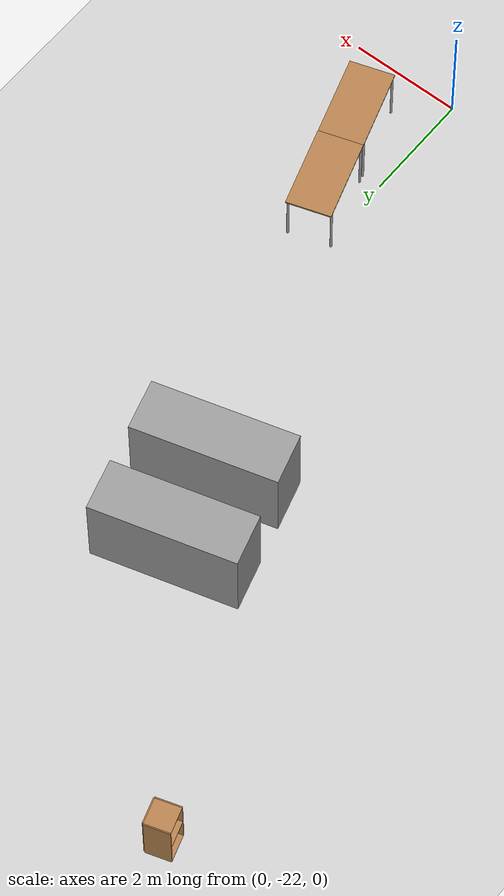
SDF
<sdf version="1.10">
 <world name="maze">
  <model name="ground_plane">
   <static>true</static>
   <link name="link">
    <collision name="collision">
     <geometry><plane><normal>0 0 1</normal><size>100 100</size></plane></geometry>
    </collision>
    <visual name="visual">
     <geometry><plane><normal>0 0 1</normal><size>100 100</size></plane></geometry>
     <material>
      <ambient>0.800000012 0.800000012 0.800000012 1</ambient>
      <diffuse>0.800000012 0.800000012 0.800000012 1</diffuse>
      <specular>0.800000012 0.800000012 0.800000012 1</specular>
     </material>
     <plugin name="__default__" filename="__default__"/>
    </visual>
    <inertial>
     <mass>1</mass>
     <inertia><ixx>1</ixx><ixy>0</ixy><ixz>0</ixz><iyy>1</iyy><iyz>0</iyz><izz>1</izz></inertia>
    </inertial>
   </link>
   <plugin name="__default__" filename="__default__"/>
  </model>
  <model name="unit_box_clone_clone_1">
   <link name="link">
    <inertial>
     <mass>4.59091</mass>
     <inertia>
      <ixx>4.0056099999999999</ixx>
      <ixy>0</ixy>
      <ixz>0</ixz>
      <iyy>1.8309800000000001</iyy>
      <iyz>0</iyz>
      <izz>2.7995999999999999</izz>
     </inertia>
    </inertial>
    <visual name="visual">
     <geometry><box><size>0.90377099999999999 2.5497000000000001 1.99227</size></box></geometry>
     <material>
      <script><name>Gazebo/Grey</name><uri>file:///usr/share/gz/gz-sim8/media/gazebo.material</uri></script>
      <shader type="pixel"/>
     </material>
     <cast_shadows>false</cast_shadows>
    </visual>
    <collision name="collision">
     <geometry><box><size>0.90377099999999999 2.5497000000000001 1.99227</size></box></geometry>
     <surface>
      <friction>
       <ode><mu>1</mu><mu2>1</mu2><fdir1>0 0 0</fdir1><slip1>0</slip1><slip2>0</slip2></ode>
       <torsional>
        <coefficient>1</coefficient>
        <patch_radius>0</patch_radius>
        <surface_radius>0</surface_radius>
        <use_patch_radius>true</use_patch_radius>
        <ode><slip>0</slip></ode>
       </torsional>
      </friction>
      <bounce><restitution_coefficient>0</restitution_coefficient><threshold>1000000</threshold></bounce>
      <contact>
       <collide_without_contact>false</collide_without_contact>
       <collide_without_contact_bitmask>1</collide_without_contact_bitmask>
       <collide_bitmask>1</collide_bitmask>
       <ode>
        <soft_cfm>0</soft_cfm>
        <soft_erp>0.20000000000000001</soft_erp>
        <kp>10000000000000</kp>
        <kd>1</kd>
        <max_vel>0.01</max_vel>
        <min_depth>0</min_depth>
       </ode>
       <bullet>
        <split_impulse>true</split_impulse>
        <split_impulse_penetration_threshold>-0.01</split_impulse_penetration_threshold>
        <soft_cfm>0</soft_cfm>
        <soft_erp>0.20000000000000001</soft_erp>
        <kp>10000000000000</kp>
        <kd>1</kd>
       </bullet>
      </contact>
     </surface>
    </collision>
   </link>
   <static>false</static>
   <pose>-1.7439735747344609 -12.485835531810412 0.50210847685340998 -2.5052772549634027e-18 -8.0887639393970878e-18 -1.3000000012872535</pose>
  </model>
  <model name="unit_box_clone_clone_2">
   <link name="link">
    <inertial>
     <mass>4.59091</mass>
     <inertia>
      <ixx>4.0056099999999999</ixx>
      <ixy>0</ixy>
      <ixz>0</ixz>
      <iyy>1.8309800000000001</iyy>
      <iyz>0</iyz>
      <izz>2.7995999999999999</izz>
     </inertia>
    </inertial>
    <visual name="visual">
     <geometry><box><size>0.90377099999999999 2.5497000000000001 1.99227</size></box></geometry>
     <material>
      <script><name>Gazebo/Grey</name><uri>file:///usr/share/gz/gz-sim8/media/gazebo.material</uri></script>
      <shader type="pixel"/>
     </material>
     <cast_shadows>false</cast_shadows>
    </visual>
    <collision name="collision">
     <geometry><box><size>0.90377099999999999 2.5497000000000001 1.99227</size></box></geometry>
     <surface>
      <friction>
       <ode><mu>1</mu><mu2>1</mu2><fdir1>0 0 0</fdir1><slip1>0</slip1><slip2>0</slip2></ode>
       <torsional>
        <coefficient>1</coefficient>
        <patch_radius>0</patch_radius>
        <surface_radius>0</surface_radius>
        <use_patch_radius>true</use_patch_radius>
        <ode><slip>0</slip></ode>
       </torsional>
      </friction>
      <bounce><restitution_coefficient>0</restitution_coefficient><threshold>1000000</threshold></bounce>
      <contact>
       <collide_without_contact>false</collide_without_contact>
       <collide_without_contact_bitmask>1</collide_without_contact_bitmask>
       <collide_bitmask>1</collide_bitmask>
       <ode>
        <soft_cfm>0</soft_cfm>
        <soft_erp>0.20000000000000001</soft_erp>
        <kp>10000000000000</kp>
        <kd>1</kd>
        <max_vel>0.01</max_vel>
        <min_depth>0</min_depth>
       </ode>
       <bullet>
        <split_impulse>true</split_impulse>
        <split_impulse_penetration_threshold>-0.01</split_impulse_penetration_threshold>
        <soft_cfm>0</soft_cfm>
        <soft_erp>0.20000000000000001</soft_erp>
        <kp>10000000000000</kp>
        <kd>1</kd>
       </bullet>
      </contact>
     </surface>
    </collision>
   </link>
   <static>false</static>
   <pose>-1.3428011409448706 -13.994542338813043 0.50210847685340998 -1.7952223853358381e-18 -1.2574476912388277e-17 -1.3000000012872535</pose>
  </model>
  <model name="cabinet_clone_1">
   <static>true</static>
   <link name="cabinet_bottom_plate">
    <inertial>
     <pose>0 0 -1 0 0 0</pose>
     <inertia>
      <ixx>2.0499999999999998</ixx>
      <ixy>0</ixy>
      <ixz>0</ixz>
      <iyy>2.0499999999999998</iyy>
      <iyz>0</iyz>
      <izz>2.0499999999999998</izz>
     </inertia>
     <mass>25</mass>
    </inertial>
    <collision name="cabinet_bottom_plate_geom">
     <pose>0 0 0.01 0 0 0</pose>
     <geometry><box><size>0.45000000000000001 0.45000000000000001 0.02</size></box></geometry>
    </collision>
    <visual name="cabinet_bottom_plate_geom_visual">
     <pose>0 0 0.01 0 0 0</pose>
     <geometry><box><size>0.45000000000000001 0.45000000000000001 0.02</size></box></geometry>
     <material>
      <script><uri>file:///usr/share/gz/gz-sim8/media/gazebo.material</uri><name>Gazebo/Wood</name></script>
     </material>
    </visual>
    <collision name="cabinet_bottom_plate_geom_cabinet_back_plate">
     <pose>0.23499999999999999 0 0.51000000000000001 0 0 0</pose>
     <geometry><box><size>0.02 0.45000000000000001 1.02</size></box></geometry>
    </collision>
    <visual name="cabinet_bottom_plate_geom_cabinet_back_plate_visual">
     <pose>0.23499999999999999 0 0.51000000000000001 0 0 0</pose>
     <geometry><box><size>0.02 0.45000000000000001 1.02</size></box></geometry>
     <material>
      <script><uri>file:///usr/share/gz/gz-sim8/media/gazebo.material</uri><name>Gazebo/Wood</name></script>
     </material>
    </visual>
    <collision name="cabinet_bottom_plate_geom_cabinet_left_plate">
     <pose>0 0.23499999999999999 0.51000000000000001 0 0 0</pose>
     <geometry><box><size>0.45000000000000001 0.02 1.02</size></box></geometry>
    </collision>
    <visual name="cabinet_bottom_plate_geom_cabinet_left_plate_visual">
     <pose>0 0.23499999999999999 0.51000000000000001 0 0 0</pose>
     <geometry><box><size>0.45000000000000001 0.02 1.02</size></box></geometry>
     <material>
      <script><uri>file:///usr/share/gz/gz-sim8/media/gazebo.material</uri><name>Gazebo/Wood</name></script>
     </material>
    </visual>
    <collision name="cabinet_bottom_plate_geom_cabinet_middle_plate">
     <pose>0 0 0.51000000000000001 0 0 0</pose>
     <geometry><box><size>0.45000000000000001 0.45000000000000001 0.02</size></box></geometry>
    </collision>
    <visual name="cabinet_bottom_plate_geom_cabinet_middle_plate_visual">
     <pose>0 0 0.51000000000000001 0 0 0</pose>
     <geometry><box><size>0.45000000000000001 0.45000000000000001 0.02</size></box></geometry>
     <material>
      <script><uri>file:///usr/share/gz/gz-sim8/media/gazebo.material</uri><name>Gazebo/Wood</name></script>
     </material>
    </visual>
    <collision name="cabinet_bottom_plate_geom_cabinet_right_plate">
     <pose>0 -0.23499999999999999 0.51000000000000001 0 0 0</pose>
     <geometry><box><size>0.45000000000000001 0.02 1.02</size></box></geometry>
    </collision>
    <visual name="cabinet_bottom_plate_geom_cabinet_right_plate_visual">
     <pose>0 -0.23499999999999999 0.51000000000000001 0 0 0</pose>
     <geometry><box><size>0.45000000000000001 0.02 1.02</size></box></geometry>
     <material>
      <script><uri>file:///usr/share/gz/gz-sim8/media/gazebo.material</uri><name>Gazebo/Wood</name></script>
     </material>
    </visual>
    <collision name="cabinet_bottom_plate_geom_cabinet_top_plate">
     <pose>0 0 1.01 0 0 0</pose>
     <geometry><box><size>0.45000000000000001 0.45000000000000001 0.02</size></box></geometry>
    </collision>
    <visual name="cabinet_bottom_plate_geom_cabinet_top_plate_visual">
     <pose>0 0 1.01 0 0 0</pose>
     <geometry><box><size>0.45000000000000001 0.45000000000000001 0.02</size></box></geometry>
     <material>
      <script><uri>file:///usr/share/gz/gz-sim8/media/gazebo.material</uri><name>Gazebo/Wood</name></script>
     </material>
    </visual>
   </link>
   <pose>-4.7265032566740661 -8.5677660734086736 0 0 0 0.29999999139831662</pose>
  </model>
  <model name="table_1_1">
   <static>true</static>
   <link name="link">
    <collision name="surface">
     <pose>0 0 1 0 0 0</pose>
     <geometry><box><size>1.5 0.80000000000000004 0.029999999999999999</size></box></geometry>
     <surface><friction><ode><mu>0.59999999999999998</mu><mu2>0.59999999999999998</mu2></ode></friction></surface>
    </collision>
    <visual name="visual1">
     <pose>0 0 1 0 0 0</pose>
     <geometry><box><size>1.5 0.80000000000000004 0.029999999999999999</size></box></geometry>
     <material>
      <script><uri>file:///usr/share/gz/gz-sim8/media/gazebo.material</uri><name>Gazebo/Wood</name></script>
     </material>
    </visual>
    <collision name="front_left_leg">
     <pose>0.68000000000000005 0.38 0.5 0 0 0</pose>
     <geometry><cylinder><radius>0.02</radius><length>1</length></cylinder></geometry>
    </collision>
    <visual name="front_left_leg">
     <pose>0.68000000000000005 0.38 0.5 0 0 0</pose>
     <geometry><cylinder><radius>0.02</radius><length>1</length></cylinder></geometry>
     <material>
      <script><uri>file:///usr/share/gz/gz-sim8/media/gazebo.material</uri><name>Gazebo/Grey</name></script>
     </material>
    </visual>
    <collision name="front_right_leg">
     <pose>0.68000000000000005 -0.38 0.5 0 0 0</pose>
     <geometry><cylinder><radius>0.02</radius><length>1</length></cylinder></geometry>
    </collision>
    <visual name="front_right_leg">
     <pose>0.68000000000000005 -0.38 0.5 0 0 0</pose>
     <geometry><cylinder><radius>0.02</radius><length>1</length></cylinder></geometry>
     <material>
      <script><uri>file:///usr/share/gz/gz-sim8/media/gazebo.material</uri><name>Gazebo/Grey</name></script>
     </material>
    </visual>
    <collision name="back_right_leg">
     <pose>-0.68000000000000005 -0.38 0.5 0 0 0</pose>
     <geometry><cylinder><radius>0.02</radius><length>1</length></cylinder></geometry>
    </collision>
    <visual name="back_right_leg">
     <pose>-0.68000000000000005 -0.38 0.5 0 0 0</pose>
     <geometry><cylinder><radius>0.02</radius><length>1</length></cylinder></geometry>
     <material>
      <script><uri>file:///usr/share/gz/gz-sim8/media/gazebo.material</uri><name>Gazebo/Grey</name></script>
     </material>
    </visual>
    <collision name="back_left_leg">
     <pose>-0.68000000000000005 0.38 0.5 0 0 0</pose>
     <geometry><cylinder><radius>0.02</radius><length>1</length></cylinder></geometry>
    </collision>
    <visual name="back_left_leg">
     <pose>-0.68000000000000005 0.38 0.5 0 0 0</pose>
     <geometry><cylinder><radius>0.02</radius><length>1</length></cylinder></geometry>
     <material>
      <script><uri>file:///usr/share/gz/gz-sim8/media/gazebo.material</uri><name>Gazebo/Grey</name></script>
     </material>
    </visual>
    <inertial>
     <mass>1</mass>
     <inertia><ixx>1</ixx><ixy>0</ixy><ixz>0</ixz><iyy>1</iyy><iyz>0</iyz><izz>1</izz></inertia>
    </inertial>
   </link>
   <pose>0.48050966858863831 -19.112222671508789 0 0 0 -1.2661400235226867</pose>
  </model>
  <model name="table_1_1_1">
   <static>true</static>
   <link name="link">
    <collision name="surface">
     <pose>0 0 1 0 0 0</pose>
     <geometry><box><size>1.5 0.80000000000000004 0.029999999999999999</size></box></geometry>
     <surface><friction><ode><mu>0.59999999999999998</mu><mu2>0.59999999999999998</mu2></ode></friction></surface>
    </collision>
    <visual name="visual1">
     <pose>0 0 1 0 0 0</pose>
     <geometry><box><size>1.5 0.80000000000000004 0.029999999999999999</size></box></geometry>
     <material>
      <script><uri>file:///usr/share/gz/gz-sim8/media/gazebo.material</uri><name>Gazebo/Wood</name></script>
     </material>
    </visual>
    <collision name="front_left_leg">
     <pose>0.68000000000000005 0.38 0.5 0 0 0</pose>
     <geometry><cylinder><radius>0.02</radius><length>1</length></cylinder></geometry>
    </collision>
    <visual name="front_left_leg">
     <pose>0.68000000000000005 0.38 0.5 0 0 0</pose>
     <geometry><cylinder><radius>0.02</radius><length>1</length></cylinder></geometry>
     <material>
      <script><uri>file:///usr/share/gz/gz-sim8/media/gazebo.material</uri><name>Gazebo/Grey</name></script>
     </material>
    </visual>
    <collision name="front_right_leg">
     <pose>0.68000000000000005 -0.38 0.5 0 0 0</pose>
     <geometry><cylinder><radius>0.02</radius><length>1</length></cylinder></geometry>
    </collision>
    <visual name="front_right_leg">
     <pose>0.68000000000000005 -0.38 0.5 0 0 0</pose>
     <geometry><cylinder><radius>0.02</radius><length>1</length></cylinder></geometry>
     <material>
      <script><uri>file:///usr/share/gz/gz-sim8/media/gazebo.material</uri><name>Gazebo/Grey</name></script>
     </material>
    </visual>
    <collision name="back_right_leg">
     <pose>-0.68000000000000005 -0.38 0.5 0 0 0</pose>
     <geometry><cylinder><radius>0.02</radius><length>1</length></cylinder></geometry>
    </collision>
    <visual name="back_right_leg">
     <pose>-0.68000000000000005 -0.38 0.5 0 0 0</pose>
     <geometry><cylinder><radius>0.02</radius><length>1</length></cylinder></geometry>
     <material>
      <script><uri>file:///usr/share/gz/gz-sim8/media/gazebo.material</uri><name>Gazebo/Grey</name></script>
     </material>
    </visual>
    <collision name="back_left_leg">
     <pose>-0.68000000000000005 0.38 0.5 0 0 0</pose>
     <geometry><cylinder><radius>0.02</radius><length>1</length></cylinder></geometry>
    </collision>
    <visual name="back_left_leg">
     <pose>-0.68000000000000005 0.38 0.5 0 0 0</pose>
     <geometry><cylinder><radius>0.02</radius><length>1</length></cylinder></geometry>
     <material>
      <script><uri>file:///usr/share/gz/gz-sim8/media/gazebo.material</uri><name>Gazebo/Grey</name></script>
     </material>
    </visual>
    <inertial>
     <mass>1</mass>
     <inertia><ixx>1</ixx><ixy>0</ixy><ixz>0</ixz><iyy>1</iyy><iyz>0</iyz><izz>1</izz></inertia>
    </inertial>
   </link>
   <pose>0.924660294888906 -20.534971542609256 0 0 0 -1.2661400235226867</pose>
  </model>
 </world>
</sdf>
